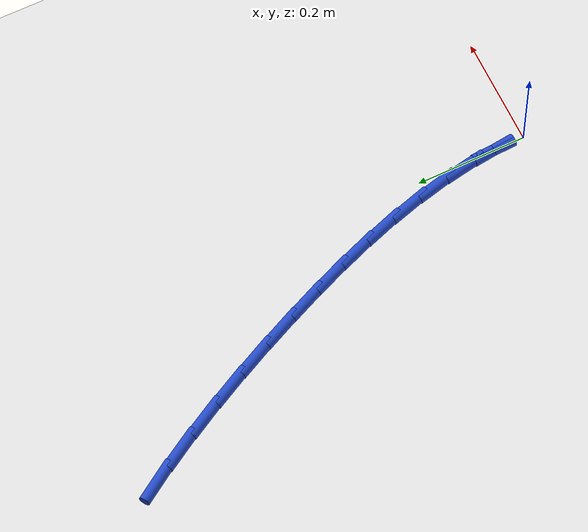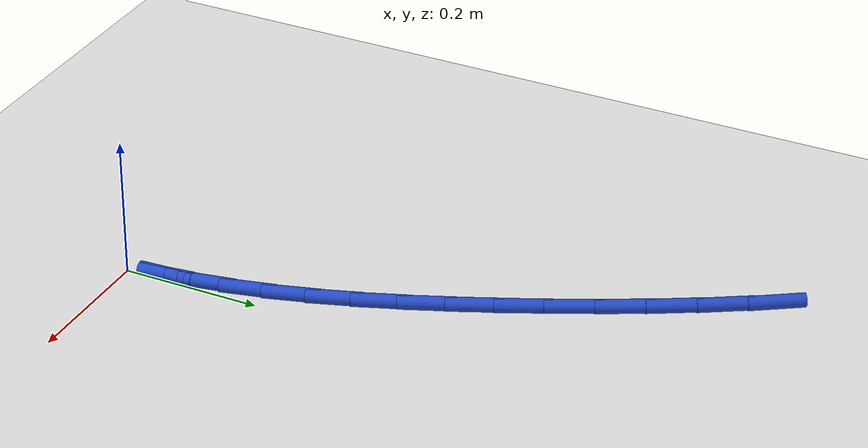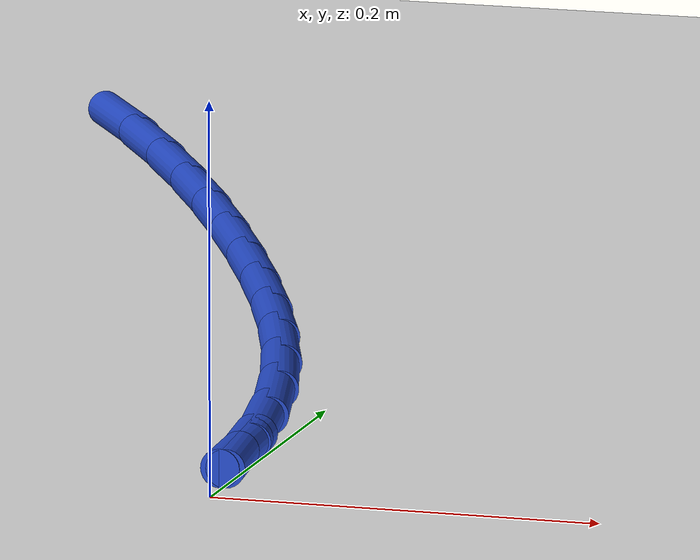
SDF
<sdf version="1.6">
 <world name="default">
  <model name="ground_plane">
   <static>1</static>
   <link name="link">
    <collision name="collision">
     <geometry><plane><normal>0 0 1</normal><size>100 100</size></plane></geometry>
     <surface><friction><ode><mu>100</mu><mu2>50</mu2></ode></friction></surface>
    </collision>
    <visual name="visual">
     <cast_shadows>0</cast_shadows>
     <geometry><plane><normal>0 0 1</normal><size>100 100</size></plane></geometry>
     <material>
      <script><uri>file://media/materials/scripts/gazebo.material</uri><name>Gazebo/WhiteGlow</name></script>
     </material>
    </visual>
   </link>
  </model>
  <model name="line">
   <link name="link_1">
    <pose>-0.003095831360657532 0.05990435149653459 0.01 0 1.57 -1.4508766021729245</pose>
    <collision name="collision">
     <geometry><cylinder><radius>0.01</radius><length>0.08</length></cylinder></geometry>
    </collision>
    <visual name="visual">
     <material>
      <script><name>Gazebo/Blue</name><uri>file://media/materials/scripts/gazebo.material</uri></script>
     </material>
     <geometry><cylinder><radius>0.01</radius><length>0.08</length></cylinder></geometry>
    </visual>
   </link>
   <link name="link_2">
    <pose>-0.010215574829469443 0.1189903914741693 0.01 0 1.57 -1.3875768083858102</pose>
    <collision name="collision">
     <geometry><cylinder><radius>0.01</radius><length>0.08</length></cylinder></geometry>
    </collision>
    <visual name="visual">
     <material>
      <script><name>Gazebo/Blue</name><uri>file://media/materials/scripts/gazebo.material</uri></script>
     </material>
     <geometry><cylinder><radius>0.01</radius><length>0.08</length></cylinder></geometry>
    </visual>
   </link>
   <link name="link_3">
    <pose>-0.021055565456212406 0.1774908235931716 0.01 0 1.57 -1.3303598712088436</pose>
    <collision name="collision">
     <geometry><cylinder><radius>0.01</radius><length>0.08</length></cylinder></geometry>
    </collision>
    <visual name="visual">
     <material>
      <script><name>Gazebo/Blue</name><uri>file://media/materials/scripts/gazebo.material</uri></script>
     </material>
     <geometry><cylinder><radius>0.01</radius><length>0.08</length></cylinder></geometry>
    </visual>
   </link>
   <link name="link_4">
    <pose>-0.03531213829066308 0.23563835151380888 0.01 0 1.57 -1.2799516328141374</pose>
    <collision name="collision">
     <geometry><cylinder><radius>0.01</radius><length>0.08</length></cylinder></geometry>
    </collision>
    <visual name="visual">
     <material>
      <script><name>Gazebo/Blue</name><uri>file://media/materials/scripts/gazebo.material</uri></script>
     </material>
     <geometry><cylinder><radius>0.01</radius><length>0.08</length></cylinder></geometry>
    </visual>
   </link>
   <link name="link_5">
    <pose>-0.05268162838259813 0.29366567889634854 0.01 0 1.57 -1.236731808809612</pose>
    <collision name="collision">
     <geometry><cylinder><radius>0.01</radius><length>0.08</length></cylinder></geometry>
    </collision>
    <visual name="visual">
     <material>
      <script><name>Gazebo/Blue</name><uri>file://media/materials/scripts/gazebo.material</uri></script>
     </material>
     <geometry><cylinder><radius>0.01</radius><length>0.08</length></cylinder></geometry>
    </visual>
   </link>
   <link name="link_6">
    <pose>-0.0728603707817942 0.3518055094010577 0.01 0 1.57 -1.2007942715424593</pose>
    <collision name="collision">
     <geometry><cylinder><radius>0.01</radius><length>0.08</length></cylinder></geometry>
    </collision>
    <visual name="visual">
     <material>
      <script><name>Gazebo/Blue</name><uri>file://media/materials/scripts/gazebo.material</uri></script>
     </material>
     <geometry><cylinder><radius>0.01</radius><length>0.08</length></cylinder></geometry>
    </visual>
   </link>
   <link name="link_7">
    <pose>-0.09554470053802797 0.41029054668820375 0.01 0 1.57 -1.1720201818947091</pose>
    <collision name="collision">
     <geometry><cylinder><radius>0.01</radius><length>0.08</length></cylinder></geometry>
    </collision>
    <visual name="visual">
     <material>
      <script><name>Gazebo/Blue</name><uri>file://media/materials/scripts/gazebo.material</uri></script>
     </material>
     <geometry><cylinder><radius>0.01</radius><length>0.08</length></cylinder></geometry>
    </visual>
   </link>
   <link name="link_8">
    <pose>-0.12043095270107605 0.469353494418054 0.01 0 1.57 -1.1499800207480022</pose>
    <collision name="collision">
     <geometry><cylinder><radius>0.01</radius><length>0.08</length></cylinder></geometry>
    </collision>
    <visual name="visual">
     <material>
      <script><name>Gazebo/Blue</name><uri>file://media/materials/scripts/gazebo.material</uri></script>
     </material>
     <geometry><cylinder><radius>0.01</radius><length>0.08</length></cylinder></geometry>
    </visual>
   </link>
   <link name="link_9">
    <pose>-0.14722140030978087 0.5292134602393591 0.01 0 1.57 -1.130246377296603</pose>
    <collision name="collision">
     <geometry><cylinder><radius>0.01</radius><length>0.08</length></cylinder></geometry>
    </collision>
    <visual name="visual">
     <material>
      <script><name>Gazebo/Blue</name><uri>file://media/materials/scripts/gazebo.material</uri></script>
     </material>
     <geometry><cylinder><radius>0.01</radius><length>0.08</length></cylinder></geometry>
    </visual>
   </link>
   <link name="link_10">
    <pose>-0.17576415739977258 0.5897556246329401 0.01 0 1.57 -1.1082991296886586</pose>
    <collision name="collision">
     <geometry><cylinder><radius>0.01</radius><length>0.08</length></cylinder></geometry>
    </collision>
    <visual name="visual">
     <material>
      <script><name>Gazebo/Blue</name><uri>file://media/materials/scripts/gazebo.material</uri></script>
     </material>
     <geometry><cylinder><radius>0.01</radius><length>0.08</length></cylinder></geometry>
    </visual>
   </link>
   <link name="link_11">
    <pose>-0.20605852118104154 0.6505190091094721 0.01 0 1.57 -1.0836538158211106</pose>
    <collision name="collision">
     <geometry><cylinder><radius>0.01</radius><length>0.08</length></cylinder></geometry>
    </collision>
    <visual name="visual">
     <material>
      <script><name>Gazebo/Blue</name><uri>file://media/materials/scripts/gazebo.material</uri></script>
     </material>
     <geometry><cylinder><radius>0.01</radius><length>0.08</length></cylinder></geometry>
    </visual>
   </link>
   <link name="link_12">
    <pose>-0.2381107957216552 0.7110265918151117 0.01 0 1.57 -1.055955147007761</pose>
    <collision name="collision">
     <geometry><cylinder><radius>0.01</radius><length>0.08</length></cylinder></geometry>
    </collision>
    <visual name="visual">
     <material>
      <script><name>Gazebo/Blue</name><uri>file://media/materials/scripts/gazebo.material</uri></script>
     </material>
     <geometry><cylinder><radius>0.01</radius><length>0.08</length></cylinder></geometry>
    </visual>
   </link>
   <link name="link_13">
    <pose>-0.2719272850896801 0.7708013508960125 0.01 0 1.57 -1.0247703254946023</pose>
    <collision name="collision">
     <geometry><cylinder><radius>0.01</radius><length>0.08</length></cylinder></geometry>
    </collision>
    <visual name="visual">
     <material>
      <script><name>Gazebo/Blue</name><uri>file://media/materials/scripts/gazebo.material</uri></script>
     </material>
     <geometry><cylinder><radius>0.01</radius><length>0.08</length></cylinder></geometry>
    </visual>
   </link>
   <link name="link_14">
    <pose>-0.3075142933531837 0.8293662644983304 0.01 0 1.57 -0.9895778816304492</pose>
    <collision name="collision">
     <geometry><cylinder><radius>0.01</radius><length>0.08</length></cylinder></geometry>
    </collision>
    <visual name="visual">
     <material>
      <script><name>Gazebo/Blue</name><uri>file://media/materials/scripts/gazebo.material</uri></script>
     </material>
     <geometry><cylinder><radius>0.01</radius><length>0.08</length></cylinder></geometry>
    </visual>
   </link>
   <link name="link_121">
    <pose>-0.003169939570275216 0.05978090292530905 0.01 0 1.57 -1.5178199850290446</pose>
    <collision name="collision">
     <geometry><cylinder><radius>0.01</radius><length>0.08</length></cylinder></geometry>
    </collision>
    <visual name="visual">
     <material>
      <script><name>Gazebo/Blue</name><uri>file://media/materials/scripts/gazebo.material</uri></script>
     </material>
     <geometry><cylinder><radius>0.01</radius><length>0.08</length></cylinder></geometry>
    </visual>
   </link>
  </model>
 </world>
</sdf>
